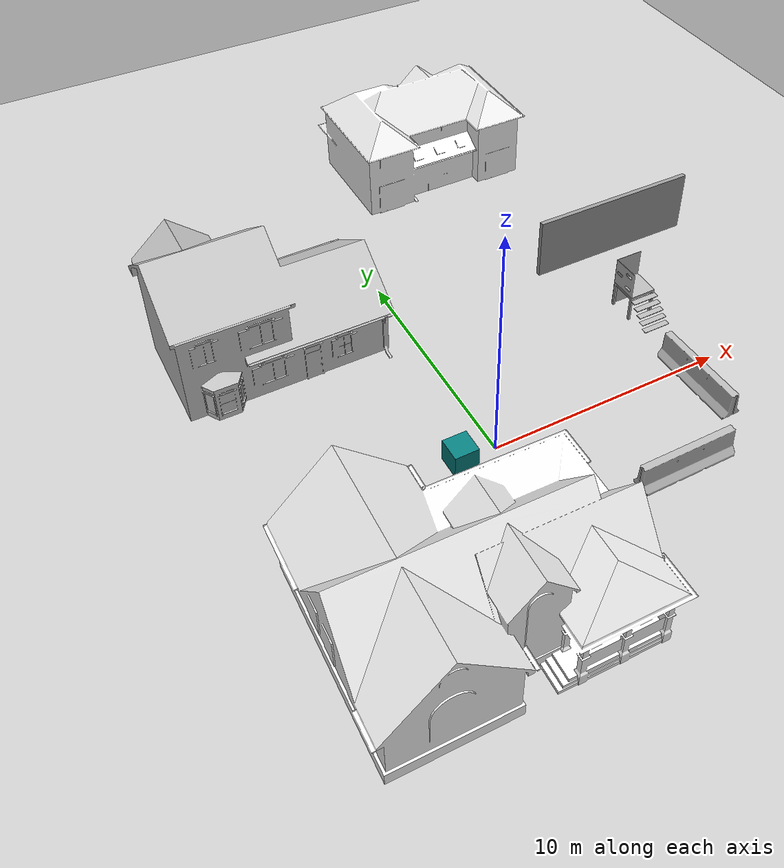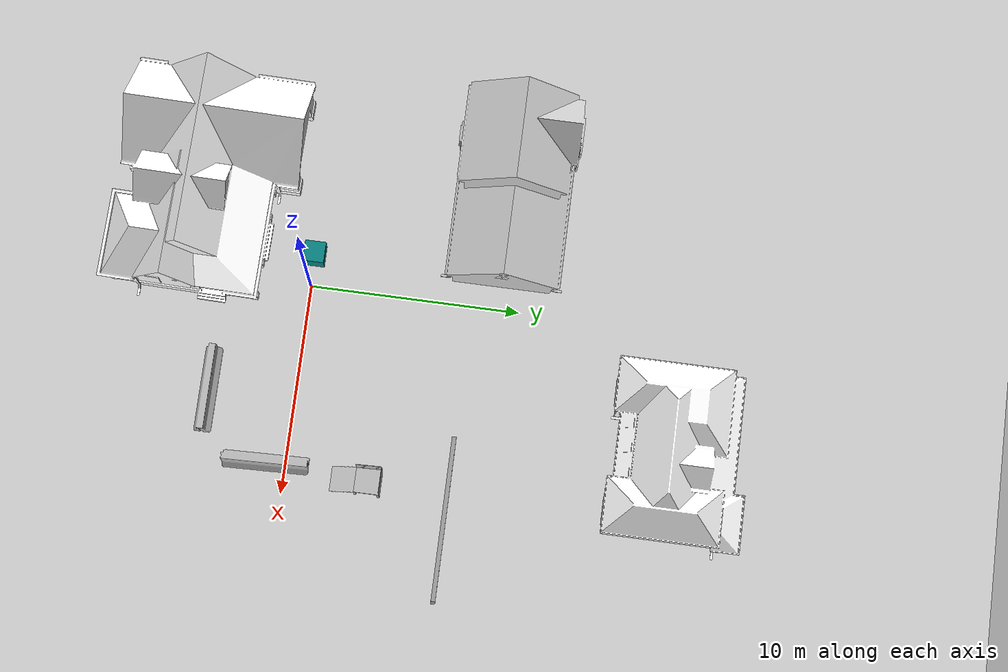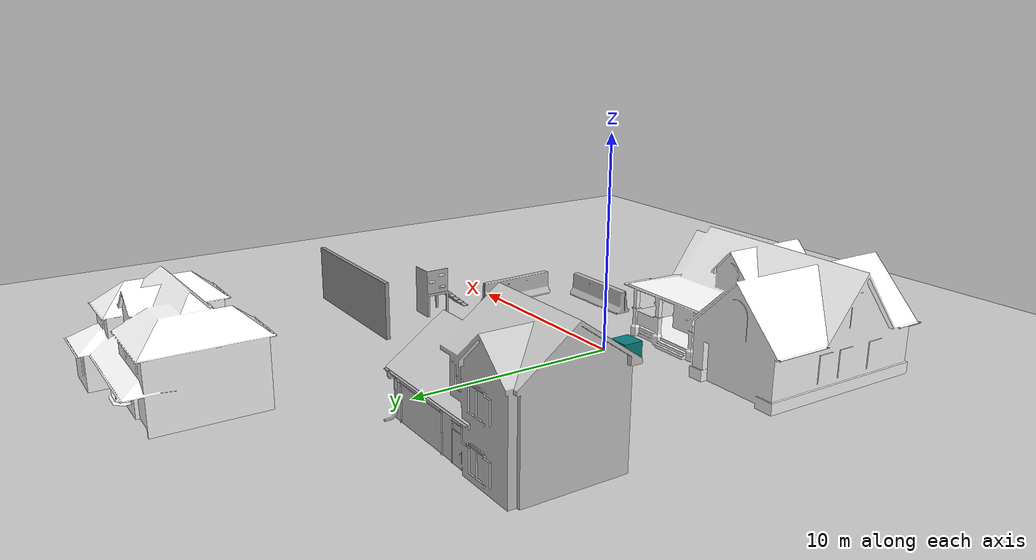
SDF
<sdf version="1.6">
 <world name="default">
  <light name="sun" type="directional">
   <pose>0 0 10 0 -0 0</pose>
   <diffuse>0.8 0.8 0.8 1</diffuse>
   <specular>0.2 0.2 0.2 1</specular>
   <attenuation>
    <range>1000</range>
    <constant>0.9</constant>
    <linear>0.01</linear>
    <quadratic>0.001</quadratic>
   </attenuation>
   <direction>-0.5 0.1 -0.9</direction>
  </light>
  <model name="ground_plane">
   <static>1</static>
   <link name="link">
    <collision name="collision">
     <geometry><plane><normal>0 0 1</normal><size>100 100</size></plane></geometry>
     <surface><friction><ode><mu>100</mu><mu2>50</mu2></ode></friction></surface>
    </collision>
    <visual name="visual">
     <cast_shadows>0</cast_shadows>
     <geometry><plane><normal>0 0 1</normal><size>100 100</size></plane></geometry>
     <material>
      <script><uri>file://media/materials/scripts/gazebo.material</uri><name>Gazebo/Grey</name></script>
     </material>
    </visual>
    <velocity_decay><linear>0</linear><angular>0</angular></velocity_decay>
   </link>
  </model>
  <physics name="default_physics" default="0" type="ode">
   <max_step_size>0.001</max_step_size>
   <real_time_factor>1</real_time_factor>
   <real_time_update_rate>1000</real_time_update_rate>
  </physics>
  <scene><ambient>0.4 0.4 0.4 1</ambient><background>0.7 0.7 0.7 1</background><shadows>1</shadows></scene>
  <model name="House 3">
   <static>1</static>
   <link name="link">
    <collision name="collision">
     <geometry><mesh><uri>model://house_3/meshes/house_3.dae</uri><scale>1 1 1</scale></mesh></geometry>
    </collision>
    <visual name="visual">
     <geometry><mesh><uri>model://house_3/meshes/house_3.dae</uri><scale>1 1 1</scale></mesh></geometry>
     <material>
      <script>
       <uri>model://house_3/materials/scripts</uri>
       <uri>model://house_3/materials/textures</uri>
       <uri>model://house_1/materials/textures</uri>
       <name>House_3/Diffuse</name>
      </script>
      <shader type="normal_map_object_space">
       <normal_map>model://house_1/materials/textures/House_1_Normal.png</normal_map>
      </shader>
     </material>
    </visual>
    <velocity_decay><linear>0</linear><angular>0</angular></velocity_decay>
   </link>
   <pose>-5 9 0 0 -0 0</pose>
  </model>
  <model name="stereocamera_model">
   <static>1</static>
   <pose>-1.5 0 0.506954 0 -0 0</pose>
   <link name="stereocamera_link">
    <inertial><mass>0.1</mass></inertial>
    <visual name="stereovisual_box">
     <geometry><box><size>1 1 1</size></box></geometry>
     <material>
      <ambient>0.03 0.5 0.5 1</ambient>
      <script><uri>__default__</uri><name>__default__</name></script>
     </material>
     <laser_retro>100</laser_retro>
    </visual>
    <collision name="collision_box">
     <geometry><box><size>1 1 1</size></box></geometry>
     <laser_retro>100</laser_retro>
    </collision>
    <sensor name="stereo_camera" type="multicamera">
     <update_rate>30</update_rate>
     <camera name="left">
      <horizontal_fov>1.39626</horizontal_fov>
      <image><width>640</width><height>480</height><format>R8G8B8</format></image>
      <clip><near>0.02</near><far>300</far></clip>
      <noise><type>gaussian</type><mean>0</mean><stddev>0.007</stddev></noise>
     </camera>
     <camera name="right">
      <pose>0 -0.2 0 0 -0 0</pose>
      <horizontal_fov>1.39626</horizontal_fov>
      <image><width>640</width><height>480</height><format>R8G8B8</format></image>
      <clip><near>0.02</near><far>300</far></clip>
      <noise><type>gaussian</type><mean>0</mean><stddev>0.007</stddev></noise>
     </camera>
     <plugin name="stereo_camera_controller" filename="libgazebo_ros_multicamera.so">
      <alwaysOn>true</alwaysOn>
      <updateRate>0.0</updateRate>
      <cameraName>sricam</cameraName>
      <imageTopicName>image_raw</imageTopicName>
      <cameraInfoTopicName>camera_info</cameraInfoTopicName>
      <frameName>left_camera_optical_frame</frameName>
      <hackBaseline>0.2</hackBaseline>
      <distortionK1>0.0</distortionK1>
      <distortionK2>0.0</distortionK2>
      <distortionK3>0.0</distortionK3>
      <distortionT1>0.0</distortionT1>
      <distortionT2>0.0</distortionT2>
     </plugin>
    </sensor>
   </link>
  </model>
  <model name="House 2">
   <static>1</static>
   <link name="link">
    <collision name="collision">
     <geometry><mesh><uri>model://house_2/meshes/house_2.dae</uri><scale>1 1 1</scale></mesh></geometry>
    </collision>
    <visual name="visual">
     <geometry><mesh><uri>model://house_2/meshes/house_2.dae</uri><scale>1 1 1</scale></mesh></geometry>
     <material>
      <script>
       <uri>model://house_2/materials/scripts</uri>
       <uri>model://house_2/materials/textures</uri>
       <uri>model://house_1/materials/textures</uri>
       <name>House_2/Diffuse</name>
      </script>
      <shader type="normal_map_object_space">
       <normal_map>model://house_1/materials/textures/House_1_Normal.png</normal_map>
      </shader>
     </material>
    </visual>
    <velocity_decay><linear>0</linear><angular>0</angular></velocity_decay>
   </link>
   <pose>5.39346 17.5219 0 0 -0 0</pose>
  </model>
  <model name="House 1">
   <static>1</static>
   <link name="link">
    <collision name="collision">
     <geometry><mesh><uri>model://house_1/meshes/house_1.dae</uri><scale>1 1 1</scale></mesh></geometry>
    </collision>
    <visual name="visual">
     <geometry><mesh><uri>model://house_1/meshes/house_1.dae</uri><scale>1 1 1</scale></mesh></geometry>
     <material>
      <script>
       <uri>model://house_1/materials/scripts</uri>
       <uri>model://house_1/materials/textures</uri>
       <name>House_1/Diffuse</name>
      </script>
      <shader type="normal_map_object_space"><normal_map>House_1_Normal.png</normal_map></shader>
     </material>
    </visual>
    <velocity_decay><linear>0</linear><angular>0</angular></velocity_decay>
   </link>
   <pose>-4.18156 -5.60557 0 0 -0 3.12318</pose>
  </model>
  <model name="jersey_barrier">
   <static>1</static>
   <link name="link">
    <visual name="visual">
     <geometry>
      <mesh><uri>model://jersey_barrier/meshes/jersey_barrier.dae</uri><scale>1 1 1</scale></mesh>
     </geometry>
    </visual>
    <collision name="upright">
     <pose>0 0 0.5715 0 -0 0</pose>
     <geometry><box><size>4.06542 0.3063 1.143</size></box></geometry>
    </collision>
    <collision name="base">
     <pose>0 0 0.032258 0 -0 0</pose>
     <geometry><box><size>4.06542 0.8107 0.064516</size></box></geometry>
    </collision>
    <collision name="base2">
     <pose>0 0 0.1 0 -0 0</pose>
     <geometry><box><size>4.06542 0.65 0.1</size></box></geometry>
    </collision>
    <collision name="base3">
     <pose>0 0 0.2 0 -0 0</pose>
     <geometry><box><size>4.06542 0.5 0.1</size></box></geometry>
    </collision>
    <collision name="left-angle">
     <pose>0 -0.224 0.2401 0.9 -0 0</pose>
     <geometry><box><size>4.06542 0.5 0.064516</size></box></geometry>
    </collision>
    <collision name="right-angle">
     <pose>0 0.224 0.2401 -0.9 0 0</pose>
     <geometry><box><size>4.06542 0.5 0.064516</size></box></geometry>
    </collision>
    <velocity_decay><linear>0</linear><angular>0</angular></velocity_decay>
   </link>
   <pose>5.56486 -4.09597 0 0 -0 0</pose>
  </model>
  <model name="jersey_barrier_0">
   <static>1</static>
   <link name="link">
    <visual name="visual">
     <geometry>
      <mesh><uri>model://jersey_barrier/meshes/jersey_barrier.dae</uri><scale>1 1 1</scale></mesh>
     </geometry>
    </visual>
    <collision name="upright">
     <pose>0 0 0.5715 0 -0 0</pose>
     <geometry><box><size>4.06542 0.3063 1.143</size></box></geometry>
    </collision>
    <collision name="base">
     <pose>0 0 0.032258 0 -0 0</pose>
     <geometry><box><size>4.06542 0.8107 0.064516</size></box></geometry>
    </collision>
    <collision name="base2">
     <pose>0 0 0.1 0 -0 0</pose>
     <geometry><box><size>4.06542 0.65 0.1</size></box></geometry>
    </collision>
    <collision name="base3">
     <pose>0 0 0.2 0 -0 0</pose>
     <geometry><box><size>4.06542 0.5 0.1</size></box></geometry>
    </collision>
    <collision name="left-angle">
     <pose>0 -0.224 0.2401 0.9 -0 0</pose>
     <geometry><box><size>4.06542 0.5 0.064516</size></box></geometry>
    </collision>
    <collision name="right-angle">
     <pose>0 0.224 0.2401 -0.9 0 0</pose>
     <geometry><box><size>4.06542 0.5 0.064516</size></box></geometry>
    </collision>
    <velocity_decay><linear>0</linear><angular>0</angular></velocity_decay>
   </link>
   <pose>8.63725 -0.90157 0 0 -0 1.6</pose>
  </model>
  <model name="grey_wall">
   <static>1</static>
   <link name="link">
    <pose>0 0 1.4 0 -0 0</pose>
    <collision name="collision"><geometry><box><size>7.5 0.2 2.8</size></box></geometry></collision>
    <visual name="visual">
     <cast_shadows>0</cast_shadows>
     <geometry><box><size>7.5 0.2 2.8</size></box></geometry>
     <material>
      <script>
       <uri>model://grey_wall/materials/scripts</uri>
       <uri>model://grey_wall/materials/textures</uri>
       <name>vrc/grey_wall</name>
      </script>
     </material>
    </visual>
    <velocity_decay><linear>0</linear><angular>0</angular></velocity_decay>
   </link>
   <pose>10.402 7.71769 0 0 -0 0</pose>
  </model>
  <model name="nist_stairs_120">
   <static>1</static>
   <link name="nist_stairs_120_link">
    <collision name="collision">
     <geometry>
      <mesh><uri>model://nist_stairs_120/meshes/nist_stairs_120.dae</uri><scale>1 1 1</scale></mesh>
     </geometry>
    </collision>
    <visual name="visual">
     <geometry>
      <mesh><uri>model://nist_stairs_120/meshes/nist_stairs_120.dae</uri><scale>1 1 1</scale></mesh>
     </geometry>
    </visual>
    <velocity_decay><linear>0</linear><angular>0</angular></velocity_decay>
   </link>
   <pose>9.01164 2.82223 0 0 -0 0</pose>
  </model>
  <model name="nist_elevated_floor_120">
   <static>1</static>
   <link name="nist_elevated_floor_120">
    <collision name="collision">
     <geometry>
      <mesh><uri>model://nist_elevated_floor_120/meshes/nist_elevated_floor_120.dae</uri><scale>1 1 1</scale></mesh>
     </geometry>
    </collision>
    <visual name="visual">
     <geometry>
      <mesh><uri>model://nist_elevated_floor_120/meshes/nist_elevated_floor_120.dae</uri><scale>1 1 1</scale></mesh>
     </geometry>
    </visual>
    <velocity_decay><linear>0</linear><angular>0</angular></velocity_decay>
   </link>
   <pose>9 4 0 0 -0 0</pose>
  </model>
  <model name="nist_maze_wall_240">
   <static>1</static>
   <link name="nist__maze_wall_240_link">
    <collision name="collision">
     <geometry>
      <mesh><uri>model://nist_maze_wall_240/meshes/nist_maze_wall_240.dae</uri><scale>1 1 1</scale></mesh>
     </geometry>
    </collision>
    <visual name="visual">
     <geometry>
      <mesh><uri>model://nist_maze_wall_240/meshes/nist_maze_wall_240.dae</uri><scale>1 1 1</scale></mesh>
     </geometry>
    </visual>
    <velocity_decay><linear>0</linear><angular>0</angular></velocity_decay>
   </link>
   <pose>9 4 0 0 -0 0</pose>
  </model>
  <model name="nist">
   <static>1</static>
   <link name="nist_maze_wall_triple_holes_120_link">
    <collision name="collision">
     <geometry>
      <mesh>
       <uri>model://nist_maze_wall_triple_holes_120/meshes/nist_maze_wall_triple_holes_120.dae</uri>
       <scale>1 1 1</scale>
      </mesh>
     </geometry>
    </collision>
    <visual name="visual">
     <geometry>
      <mesh>
       <uri>model://nist_maze_wall_triple_holes_120/meshes/nist_maze_wall_triple_holes_120.dae</uri>
       <scale>1 1 1</scale>
      </mesh>
     </geometry>
    </visual>
    <velocity_decay><linear>0</linear><angular>0</angular></velocity_decay>
   </link>
   <pose>9.02578 4.02961 1.2 0 -0 1.6</pose>
  </model>
  <gravity>0 0 -9.8</gravity>
  <magnetic_field>6e-06 2.3e-05 -4.2e-05</magnetic_field>
  <atmosphere type="adiabatic"/>
  <spherical_coordinates>
   <surface_model>EARTH_WGS84</surface_model>
   <latitude_deg>0</latitude_deg>
   <longitude_deg>0</longitude_deg>
   <elevation>0</elevation>
   <heading_deg>0</heading_deg>
  </spherical_coordinates>
  <light name="user_point_light_0" type="point">
   <pose>0.794999 -0.270048 1 0 -0 0</pose>
   <diffuse>0.5 0.5 0.5 1</diffuse>
   <specular>0.1 0.1 0.1 1</specular>
   <attenuation>
    <range>20</range>
    <constant>0.5</constant>
    <linear>0.01</linear>
    <quadratic>0.001</quadratic>
   </attenuation>
   <cast_shadows>0</cast_shadows>
   <direction>0 0 -1</direction>
  </light>
  <light name="user_point_light_1" type="point">
   <pose>1.64744 1.33748 1 0 -0 0</pose>
   <diffuse>0.5 0.5 0.5 1</diffuse>
   <specular>0.1 0.1 0.1 1</specular>
   <attenuation>
    <range>20</range>
    <constant>0.5</constant>
    <linear>0.01</linear>
    <quadratic>0.001</quadratic>
   </attenuation>
   <cast_shadows>0</cast_shadows>
   <direction>0 0 -1</direction>
  </light>
  <light name="user_point_light_3" type="point">
   <pose>1.94161 2.7896 1 0 -0 0</pose>
   <diffuse>0.5 0.5 0.5 1</diffuse>
   <specular>0.1 0.1 0.1 1</specular>
   <attenuation>
    <range>20</range>
    <constant>0.5</constant>
    <linear>0.01</linear>
    <quadratic>0.001</quadratic>
   </attenuation>
   <cast_shadows>0</cast_shadows>
   <direction>0 0 -1</direction>
  </light>
  <light name="user_point_light_2" type="point">
   <pose>3.27986 -1.8294 1 0 -0 0</pose>
   <diffuse>0.5 0.5 0.5 1</diffuse>
   <specular>0.1 0.1 0.1 1</specular>
   <attenuation>
    <range>20</range>
    <constant>0.5</constant>
    <linear>0.01</linear>
    <quadratic>0.001</quadratic>
   </attenuation>
   <cast_shadows>0</cast_shadows>
   <direction>0 0 -1</direction>
  </light>
  <light name="user_point_light_4" type="point">
   <pose>0.916237 -1.0773 1 0 -0 0</pose>
   <diffuse>0.5 0.5 0.5 1</diffuse>
   <specular>0.1 0.1 0.1 1</specular>
   <attenuation>
    <range>20</range>
    <constant>0.5</constant>
    <linear>0.01</linear>
    <quadratic>0.001</quadratic>
   </attenuation>
   <cast_shadows>0</cast_shadows>
   <direction>0 0 -1</direction>
  </light>
  <light name="user_point_light_5" type="point">
   <pose>4.33567 -3.08388 1 0 -0 0</pose>
   <diffuse>0.5 0.5 0.5 1</diffuse>
   <specular>0.1 0.1 0.1 1</specular>
   <attenuation>
    <range>20</range>
    <constant>0.5</constant>
    <linear>0.01</linear>
    <quadratic>0.001</quadratic>
   </attenuation>
   <cast_shadows>0</cast_shadows>
   <direction>0 0 -1</direction>
  </light>
 </world>
</sdf>
